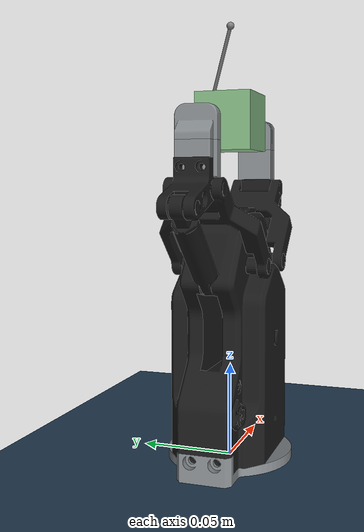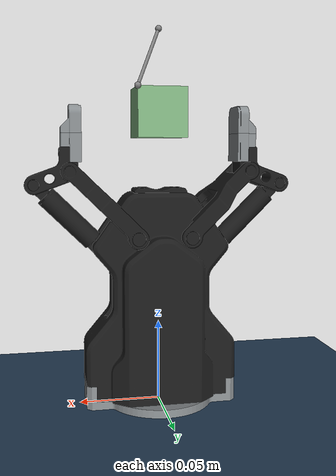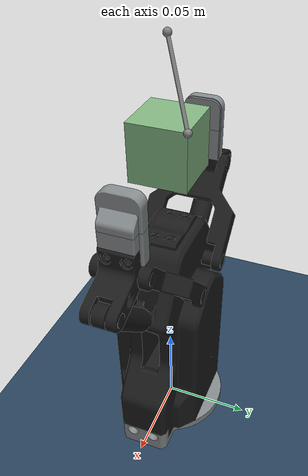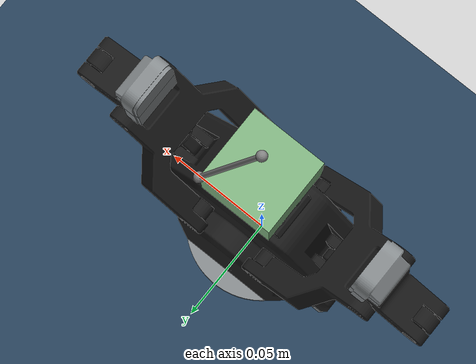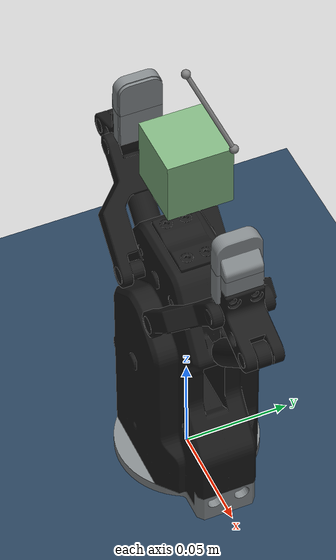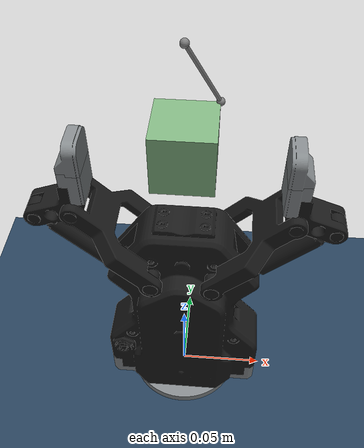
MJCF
<mujoco model="ag95 scene">

    <!-- Add some fluid viscosity to prevent the hanging box from jiggling forever -->
    <option viscosity="0.1"/>

    <include file="ag95.xml"/>

    <statistic center="0 0 0.05" extent="0.3"/>

    <visual>
      <headlight diffuse="0.6 0.6 0.6" ambient="0.3 0.3 0.3" specular="0 0 0"/>
      <rgba haze="0.15 0.25 0.35 1"/>
      <global azimuth="60" elevation="-20"/>
    </visual>

    <asset>
      <texture type="skybox" builtin="gradient" rgb1="0.3 0.5 0.7" rgb2="0 0 0" width="512" height="3072"/>
      <texture type="2d" name="groundplane" builtin="checker" mark="edge" rgb1="0.2 0.3 0.4" rgb2="0.1 0.2 0.3"
        markrgb="0.8 0.8 0.8" width="300" height="300"/>
      <material name="groundplane" texture="groundplane" texuniform="true" texrepeat="5 5" reflectance="0.2"/>
    </asset>

    <worldbody>
      <light pos="0 0 1"/>
      <light pos="0 -0.2 1" dir="0 0.2 -0.8" directional="true"/>
      <geom name="floor" size="0 0 0.05" type="plane" material="groundplane"/>
      <site size="0.002" pos="0 0 0.23" name="anchor"/>
      <body name="object" pos="0 0 0.18">
        <freejoint/>
        <geom type="box" size="0.015 0.015 0.015" rgba=".5 .7 .5 1" friction=".5" priority="1"/>
        <site size="0.002" pos="0.015 0.015 0.015" name="hook"/>
      </body>
    </worldbody>

    <tendon>
      <spatial limited="true" range="0 0.02" width="0.001">
        <site site="hook"/>
        <site site="anchor"/>
      </spatial>
    </tendon>

  </mujoco>

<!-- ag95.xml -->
<mujoco model="dh_ag95_gripper">
    <compiler angle="radian" meshdir="meshes" autolimits="true"/>

    <option impratio="10"/>

    <default>
      <joint range="0 0.943"/>
      <general
        dyntype="none" gaintype="fixed"
        biastype="affine" dynprm="1 0 0"
        gainprm="10 0 0" biasprm="0 -10 -0.1"
        forcerange="-5 5" ctrlrange="0 0.943"
      />

      <default class="visual">
        <geom group="2" type="mesh" contype="0" conaffinity="0" density="0"/>
      </default>
      <default class="collision">
        <geom group="3" type="mesh" density="2700"/>

        <default class="pad_box_0">
          <geom friction="1.5 0.1 0.0002" solimp="0.95 0.99 0.001" solref="0.001 1" priority="1" rgba="0.45 0.45 0.45 1"/>
        </default>
        <default class="pad_box_1">
          <geom friction="1.5 0.1 0.0002" solimp="0.95 0.99 0.001" solref="0.001 1" priority="1" rgba="0.55 0.55 0.55 1"/>
        </default>

      </default>
    </default>

    <asset>
      <material name="grey" specular="0.5" shininess="0.25" rgba="0.51764705882 0.53764705882 0.54764705882 1"/>
      <material name="black" specular="0.5" shininess="0.25" rgba="0.1 0.1 0.1 1"/>

      <mesh name="base_link" file="base_link.stl" scale="0.001 0.001 0.001"/>
      <mesh name="gripper_body" file="gripper_body.stl" scale="0.001 0.001 0.001"/>
      <mesh name="outer_knuckle" file="outer_knuckle.stl" scale="0.001 0.001 0.001"/>
      <mesh name="inner_knuckle" file="inner_knuckle.stl" scale="0.001 0.001 0.001"/>
      <mesh name="finger" file="finger.stl" scale="0.001 0.001 0.001"/>
      <mesh name="finger_pad_0" file="finger_pad_0.stl" scale="1 1 1"/>
      <mesh name="finger_pad_1" file="finger_pad_1.stl" scale="1 1 1"/>
    </asset>

    <worldbody>
        <body name="base">
          <geom class="collision" mesh="base_link"/>
          <geom class="visual" mesh="base_link" material="grey"/>
          <geom class="collision" mesh="gripper_body"/>
          <geom class="visual" mesh="gripper_body" material="black"/>
        </body>

        <body name="left_inner_knuckle" pos="0.016 -0.0254 0.10586" quat="0.922844 0 0.385173 0">
          <joint name="left_inner_knuckle_joint" pos="0 0 0" axis="0 -1 0"/>

          <geom class="collision" pos="-0.016 0.0254 -0.10586" mesh="inner_knuckle"/>
          <geom class="visual" pos="-0.016 0.0254 -0.10586" mesh="inner_knuckle" material="black"/>

        </body>
        <body name="left_outer_knuckle" pos="0.036673 -0.00875 0.098336" quat="0.924908 0 -0.380191 0">
          <joint name="left_outer_knuckle_joint" pos="0 0 0" axis="0 -1 0"/>

          <geom class="collision" pos="-0.036673 0.00875 -0.098336" mesh="outer_knuckle"/>
          <geom class="visual" pos="-0.036673 0.00875 -0.098336" mesh="outer_knuckle" material="black"/>

          <body name="left_finger" pos="0.055 0 0" quat="0.924908 0 0.380191 0">
            <joint name="left_finger_joint" pos="0 0 0" axis="0 1 0"/>

            <geom class="collision" pos="-0.091673 0.00875 -0.098336" mesh="finger"/>
            <geom class="visual" pos="-0.091673 0.00875 -0.098336" mesh="finger" material="black"/>

            <geom class="pad_box_0" pos="-0.091673 0.00875 -0.098336" mesh="finger_pad_0"/>
            <geom class="visual" pos="-0.091673 0.00875 -0.098336" mesh="finger_pad_0" material="grey"/>
            <geom class="pad_box_1" pos="-0.091673 0.00875 -0.098336" mesh="finger_pad_1"/>
            <geom class="visual" pos="-0.091673 0.00875 -0.098336" mesh="finger_pad_1" material="grey"/>
          </body>
        </body>
        <body name="right_inner_knuckle" pos="-0.016 0.0254 0.10586" quat="0 0.385173 0 -0.922844">
          <joint name="right_inner_knuckle_joint" pos="0 0 0" axis="0 -1 0"/>

          <geom class="collision" pos="-0.016 0.0254 -0.10586" mesh="inner_knuckle"/>
          <geom class="visual" pos="-0.016 0.0254 -0.10586" mesh="inner_knuckle" material="black"/>
        </body>
        <body name="right_outer_knuckle" pos="-0.036673 0.00875 0.098336" quat="0 0.380191 0 0.924908">
          <joint name="right_outer_knuckle_joint" pos="0 0 0" axis="0 -1 0"/>
          <geom class="collision" pos="-0.036673 0.00875 -0.098336" mesh="outer_knuckle"/>
          <geom class="visual" pos="-0.036673 0.00875 -0.098336" mesh="outer_knuckle" material="black"/>

          <body name="right_finger" pos="0.055 0 0" quat="0.924908 0 0.380191 0">
            <joint name="right_finger_joint" pos="0 0 0" axis="0 1 0"/>

            <geom class="collision" pos="-0.091673 0.00875 -0.098336" mesh="finger"/>
            <geom class="visual" pos="-0.091673 0.00875 -0.098336" mesh="finger" material="black"/>

            <geom class="pad_box_0" pos="-0.091673 0.00875 -0.098336" mesh="finger_pad_0"/>
            <geom class="visual" pos="-0.091673 0.00875 -0.098336" mesh="finger_pad_0" material="grey"/>
            <geom class="pad_box_1" pos="-0.091673 0.00875 -0.098336" mesh="finger_pad_1"/>
            <geom class="visual" pos="-0.091673 0.00875 -0.098336" mesh="finger_pad_1" material="grey"/>

          </body>
        </body>
    </worldbody>

    <contact>
      <exclude body1="base" body2="left_inner_knuckle"/>
      <exclude body1="base" body2="left_outer_knuckle"/>
      <exclude body1="base" body2="right_inner_knuckle"/>
      <exclude body1="base" body2="right_outer_knuckle"/>
      <exclude body1="left_inner_knuckle" body2="left_finger"/>
      <exclude body1="right_inner_knuckle" body2="right_finger"/>
    </contact>

    <tendon>
      <fixed name="split">
        <joint joint="left_outer_knuckle_joint" coef="0.5"/>
        <joint joint="right_outer_knuckle_joint" coef="0.5"/>
      </fixed>
    </tendon>

    <equality>
      <connect anchor="-0.020673 0 0.007524" body1="left_finger" body2="left_inner_knuckle" solimp="0.95 0.99 0.001" solref="0.005 1"/>
      <connect anchor="-0.020673 0 0.007524" body1="right_finger" body2="right_inner_knuckle" solimp="0.95 0.99 0.001" solref="0.005 1"/>
      <joint joint1="left_outer_knuckle_joint" joint2="right_outer_knuckle_joint" polycoef="0 1 0 0 0" solimp="0.95 0.99 0.001"
        solref="0.005 1"/>
    </equality>

    <actuator>
      <general name="fingers_actuator" tendon="split"/>
    </actuator>

  </mujoco>
